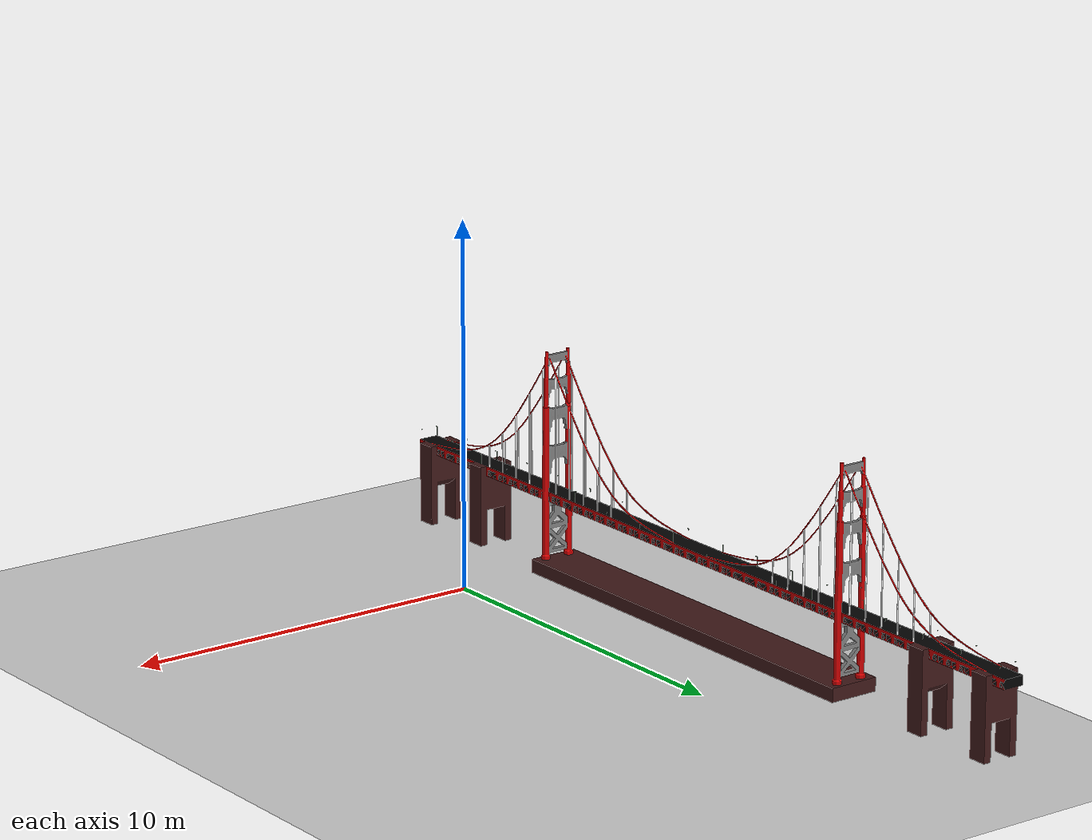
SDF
<sdf version="1.6">
 <world name="default">
  <light name="sun" type="directional">
   <pose>0 0 10 0 -0 0</pose>
   <diffuse>0.8 0.8 0.8 1</diffuse>
   <specular>0.2 0.2 0.2 1</specular>
   <attenuation>
    <range>1000</range>
    <constant>0.9</constant>
    <linear>0.01</linear>
    <quadratic>0.001</quadratic>
   </attenuation>
   <direction>-0.5 0.1 -0.9</direction>
  </light>
  <gravity>0 0 -9.8</gravity>
  <magnetic_field>6e-06 2.3e-05 -4.2e-05</magnetic_field>
  <atmosphere type="adiabatic"/>
  <physics name="default_physics" default="0" type="ode">
   <max_step_size>0.001</max_step_size>
   <real_time_factor>1</real_time_factor>
   <real_time_update_rate>1000</real_time_update_rate>
  </physics>
  <scene><ambient>0.4 0.4 0.4 1</ambient><background>0.7 0.7 0.7 1</background><shadows>1</shadows></scene>
  <spherical_coordinates>
   <surface_model>EARTH_WGS84</surface_model>
   <latitude_deg>0</latitude_deg>
   <longitude_deg>0</longitude_deg>
   <elevation>0</elevation>
   <heading_deg>0</heading_deg>
  </spherical_coordinates>
  <model name="ground_concrete">
   <static>1</static>
   <link name="link">
    <collision name="collision">
     <geometry><plane><normal>0 0 1</normal><size>100 100</size></plane></geometry>
     <surface><friction><ode><mu>100</mu><mu2>50</mu2></ode></friction></surface>
    </collision>
    <visual name="visual">
     <cast_shadows>0</cast_shadows>
     <geometry><plane><normal>0 0 1</normal><size>100 100</size></plane></geometry>
     <material>
      <script>
       <uri>model://ground_concrete/materials/scripts</uri>
       <uri>model://ground_concrete/materials/textures/</uri>
       <name>MyGroundPlane/Image</name>
      </script>
     </material>
    </visual>
   </link>
   <pose>-0.037168 0.044549 0 0 -0 0</pose>
  </model>
  <model name="suspension_bridge">
   <pose>-2.98014 6.1059 -0.273468 0 -0 0</pose>
   <link name="link">
    <inertial>
     <mass>200</mass>
     <inertia><ixx>400.2</ixx><ixy>0</ixy><ixz>0</ixz><iyy>400.8</iyy><iyz>0</iyz><izz>800.6</izz></inertia>
    </inertial>
    <visual name="visual">
     <geometry><mesh><uri>model://suspension_bridge/meshes/suspension_bridge.dae</uri></mesh></geometry>
    </visual>
    <collision name="collision">
     <geometry><mesh><uri>model://suspension_bridge/meshes/suspension_bridge.dae</uri></mesh></geometry>
    </collision>
    <kinematic>1</kinematic>
   </link>
  </model>
 </world>
</sdf>
